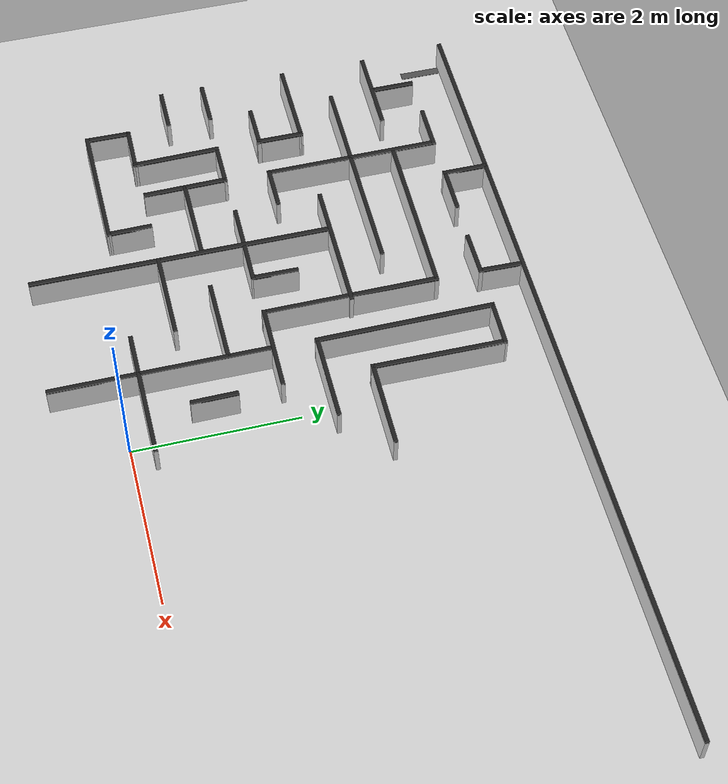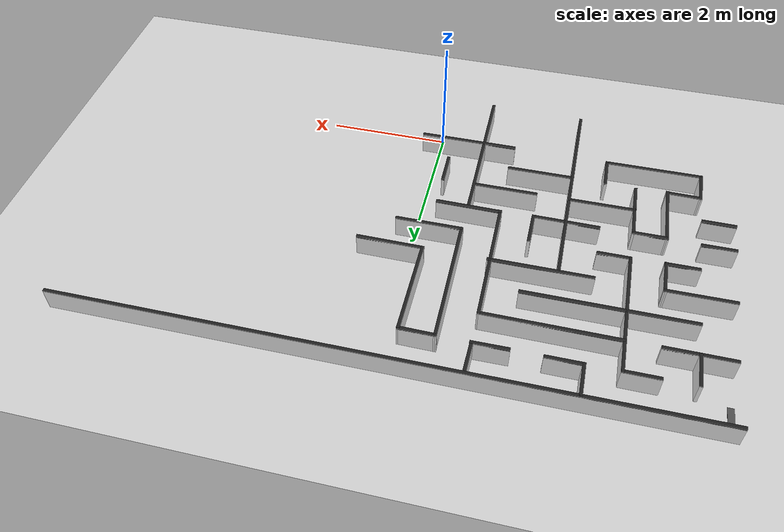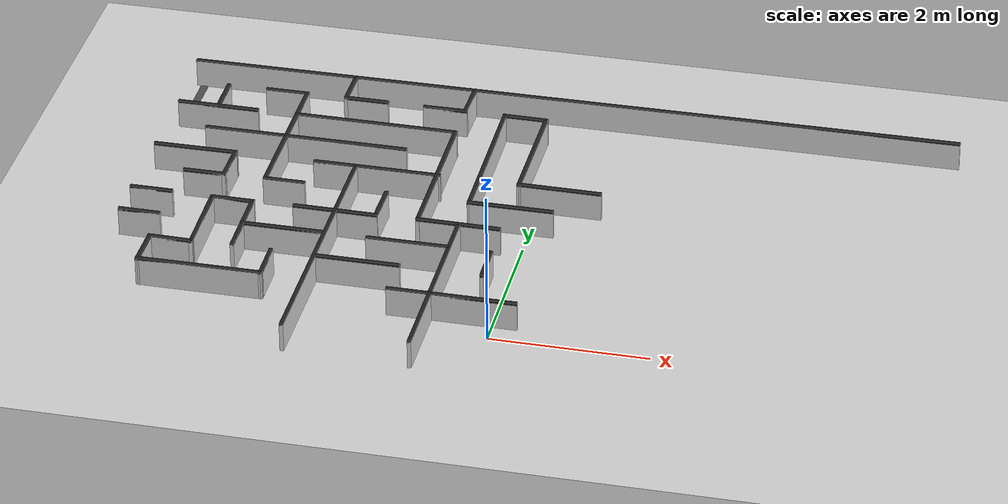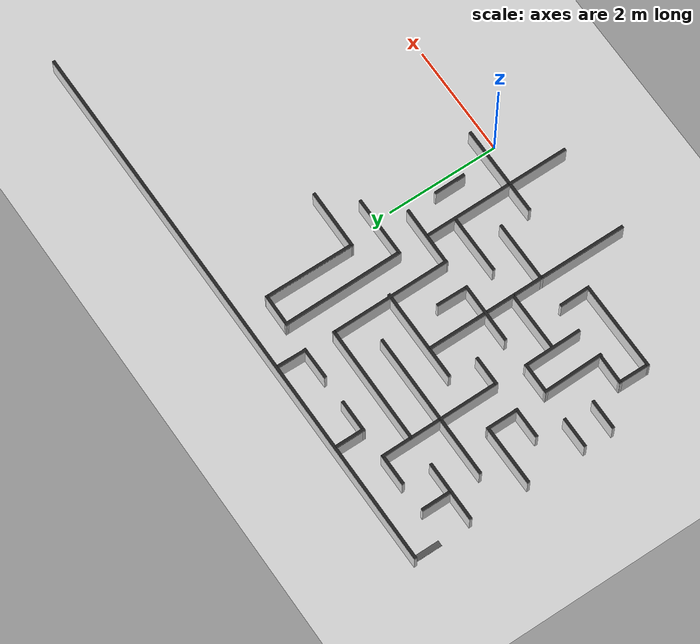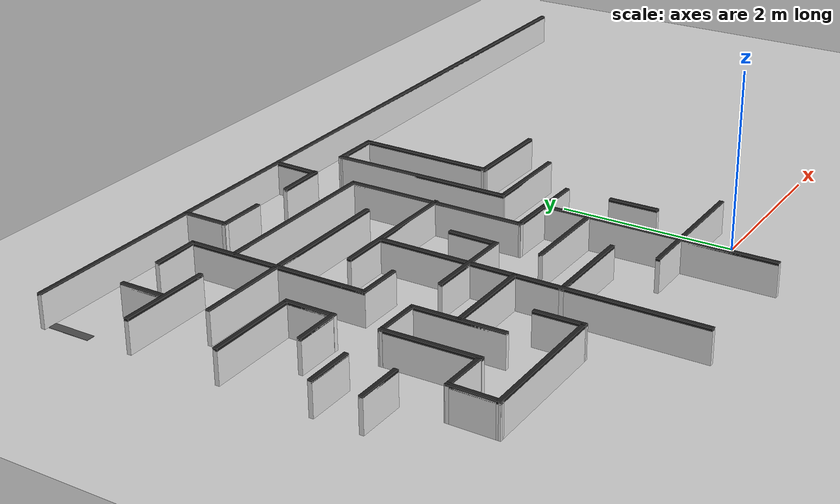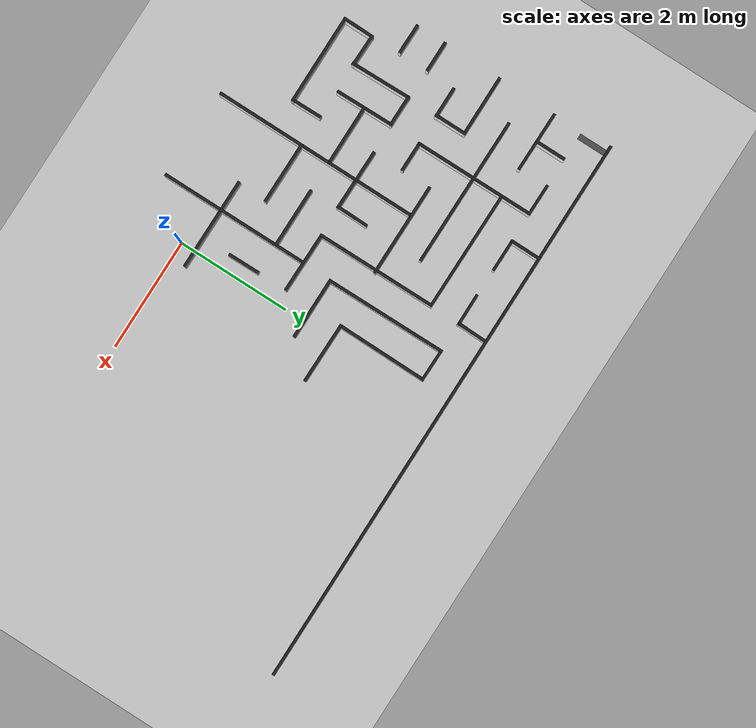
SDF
<sdf version="1.6">
 <world name="default">
  <model name="ground_plane">
   <static>1</static>
   <link name="link">
    <collision name="collision">
     <geometry><plane><normal>0 0 1</normal><size>100 100</size></plane></geometry>
     <surface><friction><ode><mu>100</mu><mu2>50</mu2></ode></friction></surface>
    </collision>
    <visual name="visual">
     <cast_shadows>0</cast_shadows>
     <geometry><plane><normal>0 0 1</normal><size>100 100</size></plane></geometry>
     <material>
      <script><uri>file://media/materials/scripts/gazebo.material</uri><name>Gazebo/Grey</name></script>
     </material>
    </visual>
   </link>
  </model>
  <model name="maze_cross_body">
   <link name="Wall_110">
    <collision name="Wall_110_Collision">
     <geometry><box><size>1.62804 0.05 0.37</size></box></geometry>
     <pose>0 0 0.185 0 -0 0</pose>
    </collision>
    <visual name="Wall_110_Visual">
     <pose>0 0 0.185 0 -0 0</pose>
     <geometry><box><size>1.62804 0.05 0.37</size></box></geometry>
     <material>
      <script><uri>file://media/materials/scripts/gazebo.material</uri><name>Gazebo/White</name></script>
      <ambient>1 1 1 1</ambient>
     </material>
    </visual>
    <pose>-0.504978 0.269875 0 0 -0 0.000287</pose>
   </link>
   <link name="Wall_112">
    <collision name="Wall_112_Collision">
     <geometry><box><size>2.66277 0.05 0.37</size></box></geometry>
     <pose>0 0 0.185 0 -0 0</pose>
    </collision>
    <visual name="Wall_112_Visual">
     <pose>0 0 0.185 0 -0 0</pose>
     <geometry><box><size>2.66277 0.05 0.37</size></box></geometry>
     <material>
      <script><uri>file://media/materials/scripts/gazebo.material</uri><name>Gazebo/White</name></script>
      <ambient>1 1 1 1</ambient>
     </material>
    </visual>
    <pose>-0.777215 0.532264 0 0 0 -1.56866</pose>
   </link>
   <link name="Wall_142">
    <collision name="Wall_142_Collision">
     <geometry><box><size>1.60626 0.05 0.37</size></box></geometry>
     <pose>0 0 0.185 0 -0 0</pose>
    </collision>
    <visual name="Wall_142_Visual">
     <pose>0 0 0.185 0 -0 0</pose>
     <geometry><box><size>1.60626 0.05 0.37</size></box></geometry>
     <material>
      <script><uri>file://media/materials/scripts/gazebo.material</uri><name>Gazebo/White</name></script>
      <ambient>1 1 1 1</ambient>
     </material>
    </visual>
    <pose>-3.67313 0.277908 0 0 -0 0.003522</pose>
   </link>
   <link name="Wall_143">
    <collision name="Wall_143_Collision">
     <geometry><box><size>0.556614 0.05 0.37</size></box></geometry>
     <pose>0 0 0.185 0 -0 0</pose>
    </collision>
    <visual name="Wall_143_Visual">
     <pose>0 0 0.185 0 -0 0</pose>
     <geometry><box><size>0.556614 0.05 0.37</size></box></geometry>
     <material>
      <script><uri>file://media/materials/scripts/gazebo.material</uri><name>Gazebo/White</name></script>
      <ambient>1 1 1 1</ambient>
     </material>
    </visual>
    <pose>-2.89814 0.533936 0 0 -0 1.58318</pose>
   </link>
   <link name="Wall_145">
    <collision name="Wall_145_Collision">
     <geometry><box><size>0.569038 0.05 0.37</size></box></geometry>
     <pose>0 0 0.185 0 -0 0</pose>
    </collision>
    <visual name="Wall_145_Visual">
     <pose>0 0 0.185 0 -0 0</pose>
     <geometry><box><size>0.569038 0.05 0.37</size></box></geometry>
     <material>
      <script><uri>file://media/materials/scripts/gazebo.material</uri><name>Gazebo/White</name></script>
      <ambient>1 1 1 1</ambient>
     </material>
    </visual>
    <pose>-4.44811 0.534667 0 0 0 -1.58294</pose>
   </link>
   <link name="Wall_147">
    <collision name="Wall_147_Collision">
     <geometry><box><size>0.580958 0.05 0.37</size></box></geometry>
     <pose>0 0 0.185 0 -0 0</pose>
    </collision>
    <visual name="Wall_147_Visual">
     <pose>0 0 0.185 0 -0 0</pose>
     <geometry><box><size>0.580958 0.05 0.37</size></box></geometry>
     <material>
      <script><uri>file://media/materials/scripts/gazebo.material</uri><name>Gazebo/White</name></script>
      <ambient>1 1 1 1</ambient>
     </material>
    </visual>
    <pose>-4.17954 0.790408 0 0 0 -0.014163</pose>
   </link>
   <link name="Wall_148">
    <collision name="Wall_148_Collision">
     <geometry><box><size>1.08977 0.05 0.37</size></box></geometry>
     <pose>0 0 0.185 0 -0 0</pose>
    </collision>
    <visual name="Wall_148_Visual">
     <pose>0 0 0.185 0 -0 0</pose>
     <geometry><box><size>1.08977 0.05 0.37</size></box></geometry>
     <material>
      <script><uri>file://media/materials/scripts/gazebo.material</uri><name>Gazebo/White</name></script>
      <ambient>1 1 1 1</ambient>
     </material>
    </visual>
    <pose>-3.92406 1.29986 0 0 -0 1.58991</pose>
   </link>
   <link name="Wall_149">
    <collision name="Wall_149_Collision">
     <geometry><box><size>0.569373 0.05 0.37</size></box></geometry>
     <pose>0 0 0.185 0 -0 0</pose>
    </collision>
    <visual name="Wall_149_Visual">
     <pose>0 0 0.185 0 -0 0</pose>
     <geometry><box><size>0.569373 0.05 0.37</size></box></geometry>
     <material>
      <script><uri>file://media/materials/scripts/gazebo.material</uri><name>Gazebo/White</name></script>
      <ambient>1 1 1 1</ambient>
     </material>
    </visual>
    <pose>-3.6745 1.81915 0 0 0 -0.001927</pose>
   </link>
   <link name="Wall_150">
    <collision name="Wall_150_Collision">
     <geometry><box><size>1.04254 0.05 0.37</size></box></geometry>
     <pose>0 0 0.185 0 -0 0</pose>
    </collision>
    <visual name="Wall_150_Visual">
     <pose>0 0 0.185 0 -0 0</pose>
     <geometry><box><size>1.04254 0.05 0.37</size></box></geometry>
     <material>
      <script><uri>file://media/materials/scripts/gazebo.material</uri><name>Gazebo/White</name></script>
      <ambient>1 1 1 1</ambient>
     </material>
    </visual>
    <pose>-3.408 1.32265 0 0 0 -1.55668</pose>
   </link>
   <link name="Wall_152">
    <collision name="Wall_152_Collision">
     <geometry><box><size>1.08297 0.05 0.37</size></box></geometry>
     <pose>0 0 0.185 0 -0 0</pose>
    </collision>
    <visual name="Wall_152_Visual">
     <pose>0 0 0.185 0 -0 0</pose>
     <geometry><box><size>1.08297 0.05 0.37</size></box></geometry>
     <material>
      <script><uri>file://media/materials/scripts/gazebo.material</uri><name>Gazebo/White</name></script>
      <ambient>1 1 1 1</ambient>
     </material>
    </visual>
    <pose>-2.8875 1.31615 0 0 -0 0.002904</pose>
   </link>
   <link name="Wall_154">
    <collision name="Wall_154_Collision">
     <geometry><box><size>3.65 0.05 0.37</size></box></geometry>
     <pose>0 0 0.185 0 -0 0</pose>
    </collision>
    <visual name="Wall_154_Visual">
     <pose>0 0 0.185 0 -0 0</pose>
     <geometry><box><size>3.65 0.05 0.37</size></box></geometry>
     <material>
      <script><uri>file://media/materials/scripts/gazebo.material</uri><name>Gazebo/White</name></script>
      <ambient>1 1 1 1</ambient>
     </material>
    </visual>
    <pose>-2.355 1.05565 0 0 0 -1.5708</pose>
   </link>
   <link name="Wall_162">
    <collision name="Wall_162_Collision">
     <geometry><box><size>1.108 0.05 0.37</size></box></geometry>
     <pose>0 0 0.185 0 -0 0</pose>
    </collision>
    <visual name="Wall_162_Visual">
     <pose>0 0 0.185 0 -0 0</pose>
     <geometry><box><size>1.108 0.05 0.37</size></box></geometry>
     <material>
      <script><uri>file://media/materials/scripts/gazebo.material</uri><name>Gazebo/White</name></script>
      <ambient>1 1 1 1</ambient>
     </material>
    </visual>
    <pose>-1.82612 0.79121 0 0 -0 0</pose>
   </link>
   <link name="Wall_164">
    <collision name="Wall_164_Collision">
     <geometry><box><size>1.08602 0.05 0.37</size></box></geometry>
     <pose>0 0 0.185 0 -0 0</pose>
    </collision>
    <visual name="Wall_164_Visual">
     <pose>0 0 0.185 0 -0 0</pose>
     <geometry><box><size>1.08602 0.05 0.37</size></box></geometry>
     <material>
      <script><uri>file://media/materials/scripts/gazebo.material</uri><name>Gazebo/White</name></script>
      <ambient>1 1 1 1</ambient>
     </material>
    </visual>
    <pose>-2.35401 1.83312 0 0 0 -0.006702</pose>
   </link>
   <link name="Wall_166">
    <collision name="Wall_166_Collision">
     <geometry><box><size>0.577563 0.05 0.37</size></box></geometry>
     <pose>0 0 0.185 0 -0 0</pose>
    </collision>
    <visual name="Wall_166_Visual">
     <pose>0 0 0.185 0 -0 0</pose>
     <geometry><box><size>0.577563 0.05 0.37</size></box></geometry>
     <material>
      <script><uri>file://media/materials/scripts/gazebo.material</uri><name>Gazebo/White</name></script>
      <ambient>1 1 1 1</ambient>
     </material>
    </visual>
    <pose>-1.833 2.09365 0 0 -0 1.55943</pose>
   </link>
   <link name="Wall_168">
    <collision name="Wall_168_Collision">
     <geometry><box><size>1.64999 0.05 0.37</size></box></geometry>
     <pose>0 0 0.185 0 -0 0</pose>
    </collision>
    <visual name="Wall_168_Visual">
     <pose>0 0 0.185 0 -0 0</pose>
     <geometry><box><size>1.64999 0.05 0.37</size></box></geometry>
     <material>
      <script><uri>file://media/materials/scripts/gazebo.material</uri><name>Gazebo/White</name></script>
      <ambient>1 1 1 1</ambient>
     </material>
    </visual>
    <pose>-2.081 2.89265 0 0 -0 0</pose>
   </link>
   <link name="Wall_170">
    <collision name="Wall_170_Collision">
     <geometry><box><size>2.14274 0.05 0.37</size></box></geometry>
     <pose>0 0 0.185 0 -0 0</pose>
    </collision>
    <visual name="Wall_170_Visual">
     <pose>0 0 0.185 0 -0 0</pose>
     <geometry><box><size>2.14274 0.05 0.37</size></box></geometry>
     <material>
      <script><uri>file://media/materials/scripts/gazebo.material</uri><name>Gazebo/White</name></script>
      <ambient>1 1 1 1</ambient>
     </material>
    </visual>
    <pose>-1.30774 2.89428 0 0 0 -1.56672</pose>
   </link>
   <link name="Wall_172">
    <collision name="Wall_172_Collision">
     <geometry><box><size>1.08005 0.05 0.37</size></box></geometry>
     <pose>0 0 0.185 0 -0 0</pose>
    </collision>
    <visual name="Wall_172_Visual">
     <pose>0 0 0.185 0 -0 0</pose>
     <geometry><box><size>1.08005 0.05 0.37</size></box></geometry>
     <material>
      <script><uri>file://media/materials/scripts/gazebo.material</uri><name>Gazebo/White</name></script>
      <ambient>1 1 1 1</ambient>
     </material>
    </visual>
    <pose>-0.788472 1.84575 0 0 0 -0.009708</pose>
   </link>
   <link name="Wall_175">
    <collision name="Wall_175_Collision">
     <geometry><box><size>1.05434 0.05 0.37</size></box></geometry>
     <pose>0 0 0.185 0 -0 0</pose>
    </collision>
    <visual name="Wall_175_Visual">
     <pose>0 0 0.185 0 -0 0</pose>
     <geometry><box><size>1.05434 0.05 0.37</size></box></geometry>
     <material>
      <script><uri>file://media/materials/scripts/gazebo.material</uri><name>Gazebo/White</name></script>
      <ambient>1 1 1 1</ambient>
     </material>
    </visual>
    <pose>-1.306 1.31515 0 0 -0 0.000996</pose>
   </link>
   <link name="Wall_184">
    <collision name="Wall_184_Collision">
     <geometry><box><size>0.542511 0.05 0.37</size></box></geometry>
     <pose>0 0 0.185 0 -0 0</pose>
    </collision>
    <visual name="Wall_184_Visual">
     <pose>0 0 0.185 0 -0 0</pose>
     <geometry><box><size>0.542511 0.05 0.37</size></box></geometry>
     <material>
      <script><uri>file://media/materials/scripts/gazebo.material</uri><name>Gazebo/White</name></script>
      <ambient>1 1 1 1</ambient>
     </material>
    </visual>
    <pose>-4.732 1.31315 0 0 0 -0.006097</pose>
   </link>
   <link name="Wall_186">
    <collision name="Wall_186_Collision">
     <geometry><box><size>0.554018 0.05 0.37</size></box></geometry>
     <pose>0 0 0.185 0 -0 0</pose>
    </collision>
    <visual name="Wall_186_Visual">
     <pose>0 0 0.185 0 -0 0</pose>
     <geometry><box><size>0.554018 0.05 0.37</size></box></geometry>
     <material>
      <script><uri>file://media/materials/scripts/gazebo.material</uri><name>Gazebo/White</name></script>
      <ambient>1 1 1 1</ambient>
     </material>
    </visual>
    <pose>-4.73 1.84165 0 0 -0 0</pose>
   </link>
   <link name="Wall_188">
    <collision name="Wall_188_Collision">
     <geometry><box><size>1.09105 0.05 0.37</size></box></geometry>
     <pose>0 0 0.185 0 -0 0</pose>
    </collision>
    <visual name="Wall_188_Visual">
     <pose>0 0 0.185 0 -0 0</pose>
     <geometry><box><size>1.09105 0.05 0.37</size></box></geometry>
     <material>
      <script><uri>file://media/materials/scripts/gazebo.material</uri><name>Gazebo/White</name></script>
      <ambient>1 1 1 1</ambient>
     </material>
    </visual>
    <pose>-4.45348 2.89108 0 0 -0 0.005045</pose>
   </link>
   <link name="Wall_189">
    <collision name="Wall_189_Collision">
     <geometry><box><size>0.586306 0.05 0.37</size></box></geometry>
     <pose>0 0 0.185 0 -0 0</pose>
    </collision>
    <visual name="Wall_189_Visual">
     <pose>0 0 0.185 0 -0 0</pose>
     <geometry><box><size>0.586306 0.05 0.37</size></box></geometry>
     <material>
      <script><uri>file://media/materials/scripts/gazebo.material</uri><name>Gazebo/White</name></script>
      <ambient>1 1 1 1</ambient>
     </material>
    </visual>
    <pose>-3.9336 2.62556 0 0 0 -1.57315</pose>
   </link>
   <link name="Wall_190">
    <collision name="Wall_190_Collision">
     <geometry><box><size>0.553846 0.05 0.37</size></box></geometry>
     <pose>0 0 0.185 0 -0 0</pose>
    </collision>
    <visual name="Wall_190_Visual">
     <pose>0 0 0.185 0 -0 0</pose>
     <geometry><box><size>0.553846 0.05 0.37</size></box></geometry>
     <material>
      <script><uri>file://media/materials/scripts/gazebo.material</uri><name>Gazebo/White</name></script>
      <ambient>1 1 1 1</ambient>
     </material>
    </visual>
    <pose>-4.18368 2.35913 0 0 0 -3.13864</pose>
   </link>
   <link name="Wall_242">
    <collision name="Wall_242_Collision">
     <geometry><box><size>1.07252 0.05 0.37</size></box></geometry>
     <pose>0 0 0.185 0 -0 0</pose>
    </collision>
    <visual name="Wall_242_Visual">
     <pose>0 0 0.185 0 -0 0</pose>
     <geometry><box><size>1.07252 0.05 0.37</size></box></geometry>
     <material>
      <script><uri>file://media/materials/scripts/gazebo.material</uri><name>Gazebo/White</name></script>
      <ambient>1 1 1 1</ambient>
     </material>
    </visual>
    <pose>-4.44775 3.9446 0 0 0 -0.003825</pose>
   </link>
   <link name="Wall_244">
    <collision name="Wall_244_Collision">
     <geometry><box><size>0.555091 0.05 0.37</size></box></geometry>
     <pose>0 0 0.185 0 -0 0</pose>
    </collision>
    <visual name="Wall_244_Visual">
     <pose>0 0 0.185 0 -0 0</pose>
     <geometry><box><size>0.555091 0.05 0.37</size></box></geometry>
     <material>
      <script><uri>file://media/materials/scripts/gazebo.material</uri><name>Gazebo/White</name></script>
      <ambient>1 1 1 1</ambient>
     </material>
    </visual>
    <pose>-4.45127 4.20219 0 0 0 -1.56948</pose>
   </link>
   <link name="Wall_246">
    <collision name="Wall_246_Collision">
     <geometry><box><size>0.569831 0.05 0.37</size></box></geometry>
     <pose>0 0 0.185 0 -0 0</pose>
    </collision>
    <visual name="Wall_246_Visual">
     <pose>0 0 0.185 0 -0 0</pose>
     <geometry><box><size>0.569831 0.05 0.37</size></box></geometry>
     <material>
      <script><uri>file://media/materials/scripts/gazebo.material</uri><name>Gazebo/White</name></script>
      <ambient>1 1 1 1</ambient>
     </material>
    </visual>
    <pose>-3.666 4.47165 0 0 -0 0</pose>
   </link>
   <link name="Wall_247">
    <collision name="Wall_247_Collision">
     <geometry><box><size>2.14961 0.05 0.37</size></box></geometry>
     <pose>0 0 0.185 0 -0 0</pose>
    </collision>
    <visual name="Wall_247_Visual">
     <pose>0 0 0.185 0 -0 0</pose>
     <geometry><box><size>2.14961 0.05 0.37</size></box></geometry>
     <material>
      <script><uri>file://media/materials/scripts/gazebo.material</uri><name>Gazebo/White</name></script>
      <ambient>1 1 1 1</ambient>
     </material>
    </visual>
    <pose>-3.403 3.42165 0 0 0 -1.56794</pose>
   </link>
   <link name="Wall_248">
    <collision name="Wall_248_Collision">
     <geometry><box><size>0.541552 0.05 0.37</size></box></geometry>
     <pose>0 0 0.185 0 -0 0</pose>
    </collision>
    <visual name="Wall_248_Visual">
     <pose>0 0 0.185 0 -0 0</pose>
     <geometry><box><size>0.541552 0.05 0.37</size></box></geometry>
     <material>
      <script><uri>file://media/materials/scripts/gazebo.material</uri><name>Gazebo/White</name></script>
      <ambient>1 1 1 1</ambient>
     </material>
    </visual>
    <pose>-3.154 2.37165 0 0 -0 0</pose>
   </link>
   <link name="Wall_250">
    <collision name="Wall_250_Collision">
     <geometry><box><size>2.64958 0.05 0.37</size></box></geometry>
     <pose>0 0 0.185 0 -0 0</pose>
    </collision>
    <visual name="Wall_250_Visual">
     <pose>0 0 0.185 0 -0 0</pose>
     <geometry><box><size>2.64958 0.05 0.37</size></box></geometry>
     <material>
      <script><uri>file://media/materials/scripts/gazebo.material</uri><name>Gazebo/White</name></script>
      <ambient>1 1 1 1</ambient>
     </material>
    </visual>
    <pose>-3.143 3.40765 0 0 -0 0</pose>
   </link>
   <link name="Wall_252">
    <collision name="Wall_252_Collision">
     <geometry><box><size>2.13349 0.05 0.37</size></box></geometry>
     <pose>0 0 0.185 0 -0 0</pose>
    </collision>
    <visual name="Wall_252_Visual">
     <pose>0 0 0.185 0 -0 0</pose>
     <geometry><box><size>2.13349 0.05 0.37</size></box></geometry>
     <material>
      <script><uri>file://media/materials/scripts/gazebo.material</uri><name>Gazebo/White</name></script>
      <ambient>1 1 1 1</ambient>
     </material>
    </visual>
    <pose>-2.3535 3.94415 0 0 0 -0.003361</pose>
   </link>
   <link name="Wall_254">
    <collision name="Wall_254_Collision">
     <geometry><box><size>0.550094 0.05 0.37</size></box></geometry>
     <pose>0 0 0.185 0 -0 0</pose>
    </collision>
    <visual name="Wall_254_Visual">
     <pose>0 0 0.185 0 -0 0</pose>
     <geometry><box><size>0.550094 0.05 0.37</size></box></geometry>
     <material>
      <script><uri>file://media/materials/scripts/gazebo.material</uri><name>Gazebo/White</name></script>
      <ambient>1 1 1 1</ambient>
     </material>
    </visual>
    <pose>-2.88304 4.72751 0 0 -0 1.56694</pose>
   </link>
   <link name="Wall_257">
    <collision name="Wall_257_Collision">
     <geometry><box><size>0.588153 0.05 0.37</size></box></geometry>
     <pose>0 0 0.185 0 -0 0</pose>
    </collision>
    <visual name="Wall_257_Visual">
     <pose>0 0 0.185 0 -0 0</pose>
     <geometry><box><size>0.588153 0.05 0.37</size></box></geometry>
     <material>
      <script><uri>file://media/materials/scripts/gazebo.material</uri><name>Gazebo/White</name></script>
      <ambient>1 1 1 1</ambient>
     </material>
    </visual>
    <pose>-2.615 4.47765 0 0 -0 0</pose>
   </link>
   <link name="Wall_259">
    <collision name="Wall_259_Collision">
     <geometry><box><size>0.581024 0.05 0.37</size></box></geometry>
     <pose>0 0 0.185 0 -0 0</pose>
    </collision>
    <visual name="Wall_259_Visual">
     <pose>0 0 0.185 0 -0 0</pose>
     <geometry><box><size>0.581024 0.05 0.37</size></box></geometry>
     <material>
      <script><uri>file://media/materials/scripts/gazebo.material</uri><name>Gazebo/White</name></script>
      <ambient>1 1 1 1</ambient>
     </material>
    </visual>
    <pose>-1.56622 4.47487 0 0 -0 0.009416</pose>
   </link>
   <link name="Wall_260">
    <collision name="Wall_260_Collision">
     <geometry><box><size>0.524703 0.05 0.37</size></box></geometry>
     <pose>0 0 0.185 0 -0 0</pose>
    </collision>
    <visual name="Wall_260_Visual">
     <pose>0 0 0.185 0 -0 0</pose>
     <geometry><box><size>0.524703 0.05 0.37</size></box></geometry>
     <material>
      <script><uri>file://media/materials/scripts/gazebo.material</uri><name>Gazebo/White</name></script>
      <ambient>1 1 1 1</ambient>
     </material>
    </visual>
    <pose>-1.30072 4.72037 0 0 -0 1.5467</pose>
   </link>
   <link name="Wall_262">
    <collision name="Wall_262_Collision">
     <geometry><box><size>2.16258 0.05 0.37</size></box></geometry>
     <pose>0 0 0.185 0 -0 0</pose>
    </collision>
    <visual name="Wall_262_Visual">
     <pose>0 0 0.185 0 -0 0</pose>
     <geometry><box><size>2.16258 0.05 0.37</size></box></geometry>
     <material>
      <script><uri>file://media/materials/scripts/gazebo.material</uri><name>Gazebo/White</name></script>
      <ambient>1 1 1 1</ambient>
     </material>
    </visual>
    <pose>-0.773483 3.41738 0 0 0 -1.56368</pose>
   </link>
   <link name="Wall_263">
    <collision name="Wall_263_Collision">
     <geometry><box><size>1.09736 0.05 0.37</size></box></geometry>
     <pose>0 0 0.185 0 -0 0</pose>
    </collision>
    <visual name="Wall_263_Visual">
     <pose>0 0 0.185 0 -0 0</pose>
     <geometry><box><size>1.09736 0.05 0.37</size></box></geometry>
     <material>
      <script><uri>file://media/materials/scripts/gazebo.material</uri><name>Gazebo/White</name></script>
      <ambient>1 1 1 1</ambient>
     </material>
    </visual>
    <pose>-0.240139 2.36205 0 0 -0 0.001781</pose>
   </link>
   <link name="Wall_278">
    <collision name="Wall_278_Collision">
     <geometry><box><size>1.08502 0.05 0.37</size></box></geometry>
     <pose>0 0 0.185 0 -0 0</pose>
    </collision>
    <visual name="Wall_278_Visual">
     <pose>0 0 0.185 0 -0 0</pose>
     <geometry><box><size>1.08502 0.05 0.37</size></box></geometry>
     <material>
      <script><uri>file://media/materials/scripts/gazebo.material</uri><name>Gazebo/White</name></script>
      <ambient>1 1 1 1</ambient>
     </material>
    </visual>
    <pose>0.2685 2.89365 0 0 0 -0.005797</pose>
   </link>
   <link name="Wall_283">
    <collision name="Wall_283_Collision">
     <geometry><box><size>1.62204 0.05 0.37</size></box></geometry>
     <pose>0 0 0.185 0 -0 0</pose>
    </collision>
    <visual name="Wall_283_Visual">
     <pose>0 0 0.185 0 -0 0</pose>
     <geometry><box><size>1.62204 0.05 0.37</size></box></geometry>
     <material>
      <script><uri>file://media/materials/scripts/gazebo.material</uri><name>Gazebo/White</name></script>
      <ambient>1 1 1 1</ambient>
     </material>
    </visual>
    <pose>-0.2435 3.68265 0 0 0 -1.57779</pose>
   </link>
   <link name="Wall_285">
    <collision name="Wall_285_Collision">
     <geometry><box><size>0.593023 0.05 0.37</size></box></geometry>
     <pose>0 0 0.185 0 -0 0</pose>
    </collision>
    <visual name="Wall_285_Visual">
     <pose>0 0 0.185 0 -0 0</pose>
     <geometry><box><size>0.593023 0.05 0.37</size></box></geometry>
     <material>
      <script><uri>file://media/materials/scripts/gazebo.material</uri><name>Gazebo/White</name></script>
      <ambient>1 1 1 1</ambient>
     </material>
    </visual>
    <pose>-0.5095 4.47115 0 0 0 -0.009208</pose>
   </link>
   <link name="Wall_310">
    <collision name="Wall_310_Collision">
     <geometry><box><size>0.564619 0.05 0.37</size></box></geometry>
     <pose>0 0 0.185 0 -0 0</pose>
    </collision>
    <visual name="Wall_310_Visual">
     <pose>0 0 0.185 0 -0 0</pose>
     <geometry><box><size>0.564619 0.05 0.37</size></box></geometry>
     <material>
      <script><uri>file://media/materials/scripts/gazebo.material</uri><name>Gazebo/White</name></script>
      <ambient>1 1 1 1</ambient>
     </material>
    </visual>
    <pose>-0.249141 1.04536 0 0 0 -1.55969</pose>
   </link>
   <link name="Wall_74">
    <collision name="Wall_74_Collision">
     <geometry><box><size>10.072 0.05 0.37</size></box></geometry>
     <pose>0 0 0.185 0 -0 0</pose>
    </collision>
    <visual name="Wall_74_Visual">
     <pose>0 0 0.185 0 -0 0</pose>
     <geometry><box><size>10.072 0.05 0.37</size></box></geometry>
     <material>
      <script><uri>file://media/materials/scripts/gazebo.material</uri><name>Gazebo/White</name></script>
      <ambient>1 1 1 1</ambient>
     </material>
    </visual>
    <pose>0 5.00309 0 0 0 -3.13909</pose>
   </link>
   <static>1</static>
  </model>
  <model name="maze_cross_body_0">
   <link name="Wall_110">
    <collision name="Wall_110_Collision">
     <geometry><box><size>1.62804 0.05 0.03</size></box></geometry>
     <pose>0 0 0.37 0 -0 0</pose>
    </collision>
    <visual name="Wall_110_Visual">
     <pose>0 0 0.37 0 -0 0</pose>
     <geometry><box><size>1.62804 0.05 0.03</size></box></geometry>
     <material>
      <script><uri>file://media/materials/scripts/gazebo.material</uri><name>Gazebo/Black</name></script>
      <ambient>0 0 0 1</ambient>
     </material>
    </visual>
    <pose>-0.504978 0.269875 0 0 -0 0.000287</pose>
   </link>
   <link name="Wall_112">
    <collision name="Wall_112_Collision">
     <geometry><box><size>2.66277 0.05 0.03</size></box></geometry>
     <pose>0 0 0.37 0 -0 0</pose>
    </collision>
    <visual name="Wall_112_Visual">
     <pose>0 0 0.37 0 -0 0</pose>
     <geometry><box><size>2.66277 0.05 0.03</size></box></geometry>
     <material>
      <script><uri>file://media/materials/scripts/gazebo.material</uri><name>Gazebo/Black</name></script>
      <ambient>0 0 0 1</ambient>
     </material>
    </visual>
    <pose>-0.777215 0.532264 0 0 0 -1.56866</pose>
   </link>
   <link name="Wall_142">
    <collision name="Wall_142_Collision">
     <geometry><box><size>1.60626 0.05 0.03</size></box></geometry>
     <pose>0 0 0.37 0 -0 0</pose>
    </collision>
    <visual name="Wall_142_Visual">
     <pose>0 0 0.37 0 -0 0</pose>
     <geometry><box><size>1.60626 0.05 0.03</size></box></geometry>
     <material>
      <script><uri>file://media/materials/scripts/gazebo.material</uri><name>Gazebo/Black</name></script>
      <ambient>0 0 0 1</ambient>
     </material>
    </visual>
    <pose>-3.67313 0.277908 0 0 -0 0.003522</pose>
   </link>
   <link name="Wall_143">
    <collision name="Wall_143_Collision">
     <geometry><box><size>0.556614 0.05 0.03</size></box></geometry>
     <pose>0 0 0.37 0 -0 0</pose>
    </collision>
    <visual name="Wall_143_Visual">
     <pose>0 0 0.37 0 -0 0</pose>
     <geometry><box><size>0.556614 0.05 0.03</size></box></geometry>
     <material>
      <script><uri>file://media/materials/scripts/gazebo.material</uri><name>Gazebo/Black</name></script>
      <ambient>0 0 0 1</ambient>
     </material>
    </visual>
    <pose>-2.89814 0.533936 0 0 -0 1.58318</pose>
   </link>
   <link name="Wall_145">
    <collision name="Wall_145_Collision">
     <geometry><box><size>0.569038 0.05 0.03</size></box></geometry>
     <pose>0 0 0.37 0 -0 0</pose>
    </collision>
    <visual name="Wall_145_Visual">
     <pose>0 0 0.37 0 -0 0</pose>
     <geometry><box><size>0.569038 0.05 0.03</size></box></geometry>
     <material>
      <script><uri>file://media/materials/scripts/gazebo.material</uri><name>Gazebo/Black</name></script>
      <ambient>0 0 0 1</ambient>
     </material>
    </visual>
    <pose>-4.44811 0.534667 0 0 0 -1.58294</pose>
   </link>
   <link name="Wall_147">
    <collision name="Wall_147_Collision">
     <geometry><box><size>0.580958 0.05 0.03</size></box></geometry>
     <pose>0 0 0.37 0 -0 0</pose>
    </collision>
    <visual name="Wall_147_Visual">
     <pose>0 0 0.37 0 -0 0</pose>
     <geometry><box><size>0.580958 0.05 0.03</size></box></geometry>
     <material>
      <script><uri>file://media/materials/scripts/gazebo.material</uri><name>Gazebo/Black</name></script>
      <ambient>0 0 0 1</ambient>
     </material>
    </visual>
    <pose>-4.17954 0.790408 0 0 0 -0.014163</pose>
   </link>
   <link name="Wall_148">
    <collision name="Wall_148_Collision">
     <geometry><box><size>1.08977 0.05 0.03</size></box></geometry>
     <pose>0 0 0.37 0 -0 0</pose>
    </collision>
    <visual name="Wall_148_Visual">
     <pose>0 0 0.37 0 -0 0</pose>
     <geometry><box><size>1.08977 0.05 0.03</size></box></geometry>
     <material>
      <script><uri>file://media/materials/scripts/gazebo.material</uri><name>Gazebo/Black</name></script>
      <ambient>0 0 0 1</ambient>
     </material>
    </visual>
    <pose>-3.92406 1.29986 0 0 -0 1.58991</pose>
   </link>
   <link name="Wall_149">
    <collision name="Wall_149_Collision">
     <geometry><box><size>0.569373 0.05 0.03</size></box></geometry>
     <pose>0 0 0.37 0 -0 0</pose>
    </collision>
    <visual name="Wall_149_Visual">
     <pose>0 0 0.37 0 -0 0</pose>
     <geometry><box><size>0.569373 0.05 0.03</size></box></geometry>
     <material>
      <script><uri>file://media/materials/scripts/gazebo.material</uri><name>Gazebo/Black</name></script>
      <ambient>0 0 0 1</ambient>
     </material>
    </visual>
    <pose>-3.6745 1.81915 0 0 0 -0.001927</pose>
   </link>
   <link name="Wall_150">
    <collision name="Wall_150_Collision">
     <geometry><box><size>1.04254 0.05 0.03</size></box></geometry>
     <pose>0 0 0.37 0 -0 0</pose>
    </collision>
    <visual name="Wall_150_Visual">
     <pose>0 0 0.37 0 -0 0</pose>
     <geometry><box><size>1.04254 0.05 0.03</size></box></geometry>
     <material>
      <script><uri>file://media/materials/scripts/gazebo.material</uri><name>Gazebo/Black</name></script>
      <ambient>0 0 0 1</ambient>
     </material>
    </visual>
    <pose>-3.408 1.32265 0 0 0 -1.55668</pose>
   </link>
   <link name="Wall_152">
    <collision name="Wall_152_Collision">
     <geometry><box><size>1.08297 0.05 0.03</size></box></geometry>
     <pose>0 0 0.37 0 -0 0</pose>
    </collision>
    <visual name="Wall_152_Visual">
     <pose>0 0 0.37 0 -0 0</pose>
     <geometry><box><size>1.08297 0.05 0.03</size></box></geometry>
     <material>
      <script><uri>file://media/materials/scripts/gazebo.material</uri><name>Gazebo/Black</name></script>
      <ambient>0 0 0 1</ambient>
     </material>
    </visual>
    <pose>-2.8875 1.31615 0 0 -0 0.002904</pose>
   </link>
   <link name="Wall_154">
    <collision name="Wall_154_Collision">
     <geometry><box><size>3.65 0.05 0.03</size></box></geometry>
     <pose>0 0 0.37 0 -0 0</pose>
    </collision>
    <visual name="Wall_154_Visual">
     <pose>0 0 0.37 0 -0 0</pose>
     <geometry><box><size>3.65 0.05 0.03</size></box></geometry>
     <material>
      <script><uri>file://media/materials/scripts/gazebo.material</uri><name>Gazebo/Black</name></script>
      <ambient>0 0 0 1</ambient>
     </material>
    </visual>
    <pose>-2.355 1.05565 0 0 0 -1.5708</pose>
   </link>
   <link name="Wall_162">
    <collision name="Wall_162_Collision">
     <geometry><box><size>1.108 0.05 0.03</size></box></geometry>
     <pose>0 0 0.37 0 -0 0</pose>
    </collision>
    <visual name="Wall_162_Visual">
     <pose>0 0 0.37 0 -0 0</pose>
     <geometry><box><size>1.108 0.05 0.03</size></box></geometry>
     <material>
      <script><uri>file://media/materials/scripts/gazebo.material</uri><name>Gazebo/Black</name></script>
      <ambient>0 0 0 1</ambient>
     </material>
    </visual>
    <pose>-1.82612 0.79121 0 0 -0 0</pose>
   </link>
   <link name="Wall_164">
    <collision name="Wall_164_Collision">
     <geometry><box><size>1.08602 0.05 0.03</size></box></geometry>
     <pose>0 0 0.37 0 -0 0</pose>
    </collision>
    <visual name="Wall_164_Visual">
     <pose>0 0 0.37 0 -0 0</pose>
     <geometry><box><size>1.08602 0.05 0.03</size></box></geometry>
     <material>
      <script><uri>file://media/materials/scripts/gazebo.material</uri><name>Gazebo/Black</name></script>
      <ambient>0 0 0 1</ambient>
     </material>
    </visual>
    <pose>-2.35401 1.83312 0 0 0 -0.006702</pose>
   </link>
   <link name="Wall_166">
    <collision name="Wall_166_Collision">
     <geometry><box><size>0.577563 0.05 0.03</size></box></geometry>
     <pose>0 0 0.37 0 -0 0</pose>
    </collision>
    <visual name="Wall_166_Visual">
     <pose>0 0 0.37 0 -0 0</pose>
     <geometry><box><size>0.577563 0.05 0.03</size></box></geometry>
     <material>
      <script><uri>file://media/materials/scripts/gazebo.material</uri><name>Gazebo/Black</name></script>
      <ambient>0 0 0 1</ambient>
     </material>
    </visual>
    <pose>-1.833 2.09365 0 0 -0 1.55943</pose>
   </link>
   <link name="Wall_168">
    <collision name="Wall_168_Collision">
     <geometry><box><size>1.64999 0.05 0.03</size></box></geometry>
     <pose>0 0 0.37 0 -0 0</pose>
    </collision>
    <visual name="Wall_168_Visual">
     <pose>0 0 0.37 0 -0 0</pose>
     <geometry><box><size>1.64999 0.05 0.03</size></box></geometry>
     <material>
      <script><uri>file://media/materials/scripts/gazebo.material</uri><name>Gazebo/Black</name></script>
      <ambient>0 0 0 1</ambient>
     </material>
    </visual>
    <pose>-2.081 2.89265 0 0 -0 0</pose>
   </link>
   <link name="Wall_170">
    <collision name="Wall_170_Collision">
     <geometry><box><size>2.14274 0.05 0.03</size></box></geometry>
     <pose>0 0 0.37 0 -0 0</pose>
    </collision>
    <visual name="Wall_170_Visual">
     <pose>0 0 0.37 0 -0 0</pose>
     <geometry><box><size>2.14274 0.05 0.03</size></box></geometry>
     <material>
      <script><uri>file://media/materials/scripts/gazebo.material</uri><name>Gazebo/Black</name></script>
      <ambient>0 0 0 1</ambient>
     </material>
    </visual>
    <pose>-1.30774 2.89428 0 0 0 -1.56672</pose>
   </link>
   <link name="Wall_172">
    <collision name="Wall_172_Collision">
     <geometry><box><size>1.08005 0.05 0.03</size></box></geometry>
     <pose>0 0 0.37 0 -0 0</pose>
    </collision>
    <visual name="Wall_172_Visual">
     <pose>0 0 0.37 0 -0 0</pose>
     <geometry><box><size>1.08005 0.05 0.03</size></box></geometry>
     <material>
      <script><uri>file://media/materials/scripts/gazebo.material</uri><name>Gazebo/Black</name></script>
      <ambient>0 0 0 1</ambient>
     </material>
    </visual>
    <pose>-0.788472 1.84575 0 0 0 -0.009708</pose>
   </link>
   <link name="Wall_175">
    <collision name="Wall_175_Collision">
     <geometry><box><size>1.05434 0.05 0.03</size></box></geometry>
     <pose>0 0 0.37 0 -0 0</pose>
    </collision>
    <visual name="Wall_175_Visual">
     <pose>0 0 0.37 0 -0 0</pose>
     <geometry><box><size>1.05434 0.05 0.03</size></box></geometry>
     <material>
      <script><uri>file://media/materials/scripts/gazebo.material</uri><name>Gazebo/Black</name></script>
      <ambient>0 0 0 1</ambient>
     </material>
    </visual>
    <pose>-1.306 1.31515 0 0 -0 0.000996</pose>
   </link>
   <link name="Wall_184">
    <collision name="Wall_184_Collision">
     <geometry><box><size>0.542511 0.05 0.03</size></box></geometry>
     <pose>0 0 0.37 0 -0 0</pose>
    </collision>
    <visual name="Wall_184_Visual">
     <pose>0 0 0.37 0 -0 0</pose>
     <geometry><box><size>0.542511 0.05 0.03</size></box></geometry>
     <material>
      <script><uri>file://media/materials/scripts/gazebo.material</uri><name>Gazebo/Black</name></script>
      <ambient>0 0 0 1</ambient>
     </material>
    </visual>
    <pose>-4.732 1.31315 0 0 0 -0.006097</pose>
   </link>
   <link name="Wall_186">
    <collision name="Wall_186_Collision">
     <geometry><box><size>0.554018 0.05 0.03</size></box></geometry>
     <pose>0 0 0.37 0 -0 0</pose>
    </collision>
    <visual name="Wall_186_Visual">
     <pose>0 0 0.37 0 -0 0</pose>
     <geometry><box><size>0.554018 0.05 0.03</size></box></geometry>
     <material>
      <script><uri>file://media/materials/scripts/gazebo.material</uri><name>Gazebo/Black</name></script>
      <ambient>0 0 0 1</ambient>
     </material>
    </visual>
    <pose>-4.73 1.84165 0 0 -0 0</pose>
   </link>
   <link name="Wall_188">
    <collision name="Wall_188_Collision">
     <geometry><box><size>1.09105 0.05 0.03</size></box></geometry>
     <pose>0 0 0.37 0 -0 0</pose>
    </collision>
    <visual name="Wall_188_Visual">
     <pose>0 0 0.37 0 -0 0</pose>
     <geometry><box><size>1.09105 0.05 0.03</size></box></geometry>
     <material>
      <script><uri>file://media/materials/scripts/gazebo.material</uri><name>Gazebo/Black</name></script>
      <ambient>0 0 0 1</ambient>
     </material>
    </visual>
    <pose>-4.45348 2.89108 0 0 -0 0.005045</pose>
   </link>
   <link name="Wall_189">
    <collision name="Wall_189_Collision">
     <geometry><box><size>0.586306 0.05 0.03</size></box></geometry>
     <pose>0 0 0.37 0 -0 0</pose>
    </collision>
    <visual name="Wall_189_Visual">
     <pose>0 0 0.37 0 -0 0</pose>
     <geometry><box><size>0.586306 0.05 0.03</size></box></geometry>
     <material>
      <script><uri>file://media/materials/scripts/gazebo.material</uri><name>Gazebo/Black</name></script>
      <ambient>0 0 0 1</ambient>
     </material>
    </visual>
    <pose>-3.9336 2.62556 0 0 0 -1.57315</pose>
   </link>
   <link name="Wall_190">
    <collision name="Wall_190_Collision">
     <geometry><box><size>0.553846 0.05 0.03</size></box></geometry>
     <pose>0 0 0.37 0 -0 0</pose>
    </collision>
    <visual name="Wall_190_Visual">
     <pose>0 0 0.37 0 -0 0</pose>
     <geometry><box><size>0.553846 0.05 0.03</size></box></geometry>
     <material>
      <script><uri>file://media/materials/scripts/gazebo.material</uri><name>Gazebo/Black</name></script>
      <ambient>0 0 0 1</ambient>
     </material>
    </visual>
    <pose>-4.18368 2.35913 0 0 0 -3.13864</pose>
   </link>
   <link name="Wall_242">
    <collision name="Wall_242_Collision">
     <geometry><box><size>1.07252 0.05 0.03</size></box></geometry>
     <pose>0 0 0.37 0 -0 0</pose>
    </collision>
    <visual name="Wall_242_Visual">
     <pose>0 0 0.37 0 -0 0</pose>
     <geometry><box><size>1.07252 0.05 0.03</size></box></geometry>
     <material>
      <script><uri>file://media/materials/scripts/gazebo.material</uri><name>Gazebo/Black</name></script>
      <ambient>0 0 0 1</ambient>
     </material>
    </visual>
    <pose>-4.44775 3.9446 0 0 0 -0.003825</pose>
   </link>
   <link name="Wall_244">
    <collision name="Wall_244_Collision">
     <geometry><box><size>0.555091 0.05 0.03</size></box></geometry>
     <pose>0 0 0.37 0 -0 0</pose>
    </collision>
    <visual name="Wall_244_Visual">
     <pose>0 0 0.37 0 -0 0</pose>
     <geometry><box><size>0.555091 0.05 0.03</size></box></geometry>
     <material>
      <script><uri>file://media/materials/scripts/gazebo.material</uri><name>Gazebo/Black</name></script>
      <ambient>0 0 0 1</ambient>
     </material>
    </visual>
    <pose>-4.45127 4.20219 0 0 0 -1.56948</pose>
   </link>
   <link name="Wall_246">
    <collision name="Wall_246_Collision">
     <geometry><box><size>0.569831 0.05 0.03</size></box></geometry>
     <pose>0 0 0.37 0 -0 0</pose>
    </collision>
    <visual name="Wall_246_Visual">
     <pose>0 0 0.37 0 -0 0</pose>
     <geometry><box><size>0.569831 0.05 0.03</size></box></geometry>
     <material>
      <script><uri>file://media/materials/scripts/gazebo.material</uri><name>Gazebo/Black</name></script>
      <ambient>0 0 0 1</ambient>
     </material>
    </visual>
    <pose>-3.666 4.47165 0 0 -0 0</pose>
   </link>
   <link name="Wall_247">
    <collision name="Wall_247_Collision">
     <geometry><box><size>2.14961 0.05 0.03</size></box></geometry>
     <pose>0 0 0.37 0 -0 0</pose>
    </collision>
    <visual name="Wall_247_Visual">
     <pose>0 0 0.37 0 -0 0</pose>
     <geometry><box><size>2.14961 0.05 0.03</size></box></geometry>
     <material>
      <script><uri>file://media/materials/scripts/gazebo.material</uri><name>Gazebo/Black</name></script>
      <ambient>0 0 0 1</ambient>
     </material>
    </visual>
    <pose>-3.403 3.42165 0 0 0 -1.56794</pose>
   </link>
   <link name="Wall_248">
    <collision name="Wall_248_Collision">
     <geometry><box><size>0.541552 0.05 0.03</size></box></geometry>
     <pose>0 0 0.37 0 -0 0</pose>
    </collision>
    <visual name="Wall_248_Visual">
     <pose>0 0 0.37 0 -0 0</pose>
     <geometry><box><size>0.541552 0.05 0.03</size></box></geometry>
     <material>
      <script><uri>file://media/materials/scripts/gazebo.material</uri><name>Gazebo/Black</name></script>
      <ambient>0 0 0 1</ambient>
     </material>
    </visual>
    <pose>-3.154 2.37165 0 0 -0 0</pose>
   </link>
   <link name="Wall_250">
    <collision name="Wall_250_Collision">
     <geometry><box><size>2.64958 0.05 0.03</size></box></geometry>
     <pose>0 0 0.37 0 -0 0</pose>
    </collision>
    <visual name="Wall_250_Visual">
     <pose>0 0 0.37 0 -0 0</pose>
     <geometry><box><size>2.64958 0.05 0.03</size></box></geometry>
     <material>
      <script><uri>file://media/materials/scripts/gazebo.material</uri><name>Gazebo/Black</name></script>
      <ambient>0 0 0 1</ambient>
     </material>
    </visual>
    <pose>-3.143 3.40765 0 0 -0 0</pose>
   </link>
   <link name="Wall_252">
    <collision name="Wall_252_Collision">
     <geometry><box><size>2.13349 0.05 0.03</size></box></geometry>
     <pose>0 0 0.37 0 -0 0</pose>
    </collision>
    <visual name="Wall_252_Visual">
     <pose>0 0 0.37 0 -0 0</pose>
     <geometry><box><size>2.13349 0.05 0.03</size></box></geometry>
     <material>
      <script><uri>file://media/materials/scripts/gazebo.material</uri><name>Gazebo/Black</name></script>
      <ambient>0 0 0 1</ambient>
     </material>
    </visual>
    <pose>-2.3535 3.94415 0 0 0 -0.003361</pose>
   </link>
   <link name="Wall_254">
    <collision name="Wall_254_Collision">
     <geometry><box><size>0.550094 0.05 0.03</size></box></geometry>
     <pose>0 0 0.37 0 -0 0</pose>
    </collision>
    <visual name="Wall_254_Visual">
     <pose>0 0 0.37 0 -0 0</pose>
     <geometry><box><size>0.550094 0.05 0.03</size></box></geometry>
     <material>
      <script><uri>file://media/materials/scripts/gazebo.material</uri><name>Gazebo/Black</name></script>
      <ambient>0 0 0 1</ambient>
     </material>
    </visual>
    <pose>-2.88304 4.72751 0 0 -0 1.56694</pose>
   </link>
   <link name="Wall_257">
    <collision name="Wall_257_Collision">
     <geometry><box><size>0.588153 0.05 0.03</size></box></geometry>
     <pose>0 0 0.37 0 -0 0</pose>
    </collision>
    <visual name="Wall_257_Visual">
     <pose>0 0 0.37 0 -0 0</pose>
     <geometry><box><size>0.588153 0.05 0.03</size></box></geometry>
     <material>
      <script><uri>file://media/materials/scripts/gazebo.material</uri><name>Gazebo/Black</name></script>
      <ambient>0 0 0 1</ambient>
     </material>
    </visual>
    <pose>-2.615 4.47765 0 0 -0 0</pose>
   </link>
   <link name="Wall_259">
    <collision name="Wall_259_Collision">
     <geometry><box><size>0.581024 0.05 0.03</size></box></geometry>
     <pose>0 0 0.37 0 -0 0</pose>
    </collision>
    <visual name="Wall_259_Visual">
     <pose>0 0 0.37 0 -0 0</pose>
     <geometry><box><size>0.581024 0.05 0.03</size></box></geometry>
     <material>
      <script><uri>file://media/materials/scripts/gazebo.material</uri><name>Gazebo/Black</name></script>
      <ambient>0 0 0 1</ambient>
     </material>
    </visual>
    <pose>-1.56622 4.47487 0 0 -0 0.009416</pose>
   </link>
   <link name="Wall_260">
    <collision name="Wall_260_Collision">
     <geometry><box><size>0.524703 0.05 0.03</size></box></geometry>
     <pose>0 0 0.37 0 -0 0</pose>
    </collision>
    <visual name="Wall_260_Visual">
     <pose>0 0 0.37 0 -0 0</pose>
     <geometry><box><size>0.524703 0.05 0.03</size></box></geometry>
     <material>
      <script><uri>file://media/materials/scripts/gazebo.material</uri><name>Gazebo/Black</name></script>
      <ambient>0 0 0 1</ambient>
     </material>
    </visual>
    <pose>-1.30072 4.72037 0 0 -0 1.5467</pose>
   </link>
   <link name="Wall_262">
    <collision name="Wall_262_Collision">
     <geometry><box><size>2.16258 0.05 0.03</size></box></geometry>
     <pose>0 0 0.37 0 -0 0</pose>
    </collision>
    <visual name="Wall_262_Visual">
     <pose>0 0 0.37 0 -0 0</pose>
     <geometry><box><size>2.16258 0.05 0.03</size></box></geometry>
     <material>
      <script><uri>file://media/materials/scripts/gazebo.material</uri><name>Gazebo/Black</name></script>
      <ambient>0 0 0 1</ambient>
     </material>
    </visual>
    <pose>-0.773483 3.41738 0 0 0 -1.56368</pose>
   </link>
   <link name="Wall_263">
    <collision name="Wall_263_Collision">
     <geometry><box><size>1.09736 0.05 0.03</size></box></geometry>
     <pose>0 0 0.37 0 -0 0</pose>
    </collision>
    <visual name="Wall_263_Visual">
     <pose>0 0 0.37 0 -0 0</pose>
     <geometry><box><size>1.09736 0.05 0.03</size></box></geometry>
     <material>
      <script><uri>file://media/materials/scripts/gazebo.material</uri><name>Gazebo/Black</name></script>
      <ambient>0 0 0 1</ambient>
     </material>
    </visual>
    <pose>-0.240139 2.36205 0 0 -0 0.001781</pose>
   </link>
   <link name="Wall_278">
    <collision name="Wall_278_Collision">
     <geometry><box><size>1.08502 0.05 0.03</size></box></geometry>
     <pose>0 0 0.37 0 -0 0</pose>
    </collision>
    <visual name="Wall_278_Visual">
     <pose>0 0 0.37 0 -0 0</pose>
     <geometry><box><size>1.08502 0.05 0.03</size></box></geometry>
     <material>
      <script><uri>file://media/materials/scripts/gazebo.material</uri><name>Gazebo/Black</name></script>
      <ambient>0 0 0 1</ambient>
     </material>
    </visual>
    <pose>0.2685 2.89365 0 0 0 -0.005797</pose>
   </link>
   <link name="Wall_283">
    <collision name="Wall_283_Collision">
     <geometry><box><size>1.62204 0.05 0.03</size></box></geometry>
     <pose>0 0 0.37 0 -0 0</pose>
    </collision>
    <visual name="Wall_283_Visual">
     <pose>0 0 0.37 0 -0 0</pose>
     <geometry><box><size>1.62204 0.05 0.03</size></box></geometry>
     <material>
      <script><uri>file://media/materials/scripts/gazebo.material</uri><name>Gazebo/Black</name></script>
      <ambient>0 0 0 1</ambient>
     </material>
    </visual>
    <pose>-0.2435 3.68265 0 0 0 -1.57779</pose>
   </link>
   <link name="Wall_285">
    <collision name="Wall_285_Collision">
     <geometry><box><size>0.593023 0.05 0.03</size></box></geometry>
     <pose>0 0 0.37 0 -0 0</pose>
    </collision>
    <visual name="Wall_285_Visual">
     <pose>0 0 0.37 0 -0 0</pose>
     <geometry><box><size>0.593023 0.05 0.03</size></box></geometry>
     <material>
      <script><uri>file://media/materials/scripts/gazebo.material</uri><name>Gazebo/Black</name></script>
      <ambient>0 0 0 1</ambient>
     </material>
    </visual>
    <pose>-0.5095 4.47115 0 0 0 -0.009208</pose>
   </link>
   <link name="Wall_310">
    <collision name="Wall_310_Collision">
     <geometry><box><size>0.564619 0.05 0.03</size></box></geometry>
     <pose>0 0 0.37 0 -0 0</pose>
    </collision>
    <visual name="Wall_310_Visual">
     <pose>0 0 0.37 0 -0 0</pose>
     <geometry><box><size>0.564619 0.05 0.03</size></box></geometry>
     <material>
      <script><uri>file://media/materials/scripts/gazebo.material</uri><name>Gazebo/Black</name></script>
      <ambient>0 0 0 1</ambient>
     </material>
    </visual>
    <pose>-0.249141 1.04536 0 0 0 -1.55969</pose>
   </link>
   <link name="Wall_74">
    <collision name="Wall_74_Collision">
     <geometry><box><size>10.072 0.05 0.03</size></box></geometry>
     <pose>0 0 0.37 0 -0 0</pose>
    </collision>
    <visual name="Wall_74_Visual">
     <pose>0 0 0.37 0 -0 0</pose>
     <geometry><box><size>10.072 0.05 0.03</size></box></geometry>
     <material>
      <script><uri>file://media/materials/scripts/gazebo.material</uri><name>Gazebo/Black</name></script>
      <ambient>0 0 0 1</ambient>
     </material>
    </visual>
    <pose>0 5.00309 0 0 0 -3.13909</pose>
   </link>
   <static>1</static>
  </model>
  <model name="asphalt_green_plane">
   <static>1</static>
   <link name="link">
    <collision name="collision"><geometry><box><size>0.5 0.1 0.005</size></box></geometry></collision>
    <visual name="visual">
     <cast_shadows>0</cast_shadows>
     <geometry><box><size>0.5 0.1 0.005</size></box></geometry>
     <material>
      <script>
       <uri>model://asphalt_green_plane/materials/scripts</uri>
       <uri>model://asphalt_green_plane/materials/textures</uri>
       <name>vrc/asphalt_green</name>
      </script>
     </material>
    </visual>
   </link>
   <pose>-4.936383 4.719381 0.00011 0 -0 1.57</pose>
  </model>
 </world>
</sdf>
